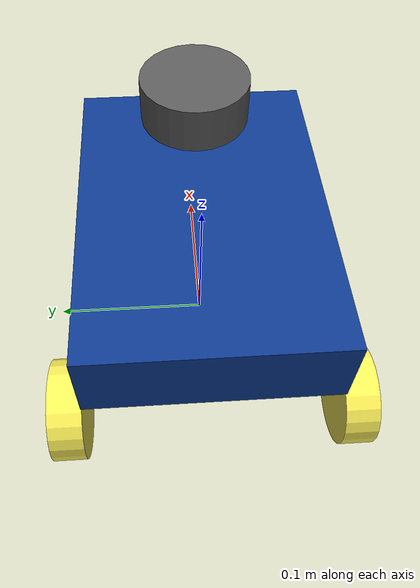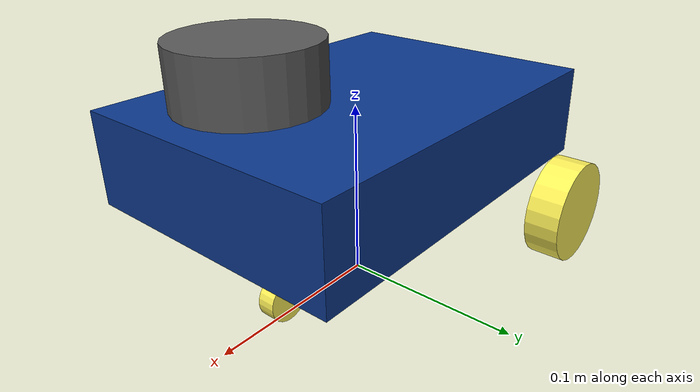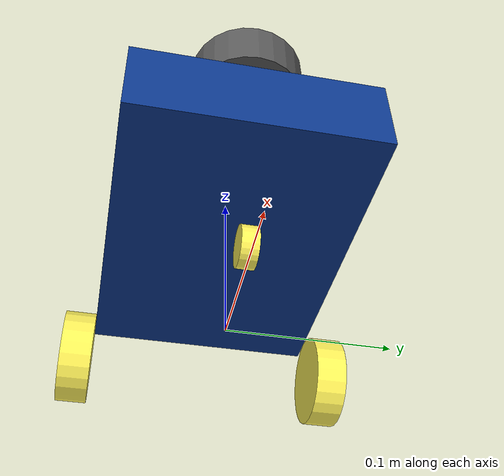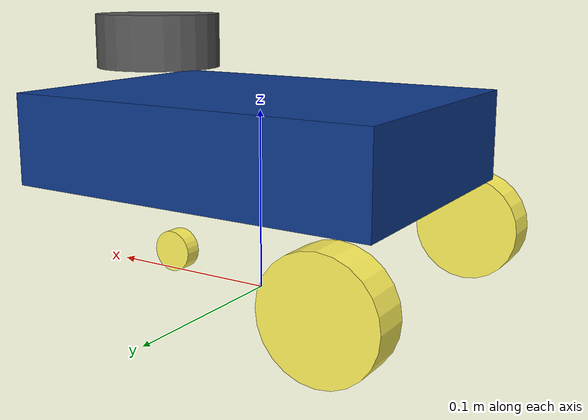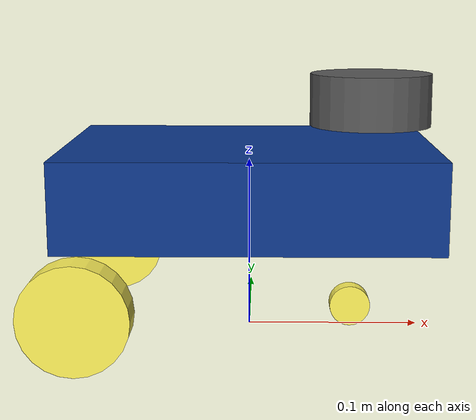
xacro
<?xml version="1.0"?>
<robot xmlns:xacro="http://www.ros.org/wiki/xacro" name="agv_robot">
  <!-- Geometry parameters -->
  <xacro:property name="base_length" value="0.210"/>
  <xacro:property name="base_width" value="0.150"/>
  <xacro:property name="base_height" value="0.05"/>
  <xacro:property name="wheel_radius" value="0.03"/>
  <xacro:property name="wheel_width" value="0.02"/>
  <xacro:property name="wheel_separation" value="0.190"/>
  <xacro:property name="base_link_z" value="${2.0 * wheel_radius}"/>
  <xacro:property name="drive_wheel_x" value="-0.09"/>
  <xacro:property name="drive_wheel_y" value="${base_width / 2.0 + wheel_width / 2.0}"/>
  <xacro:property name="caster_radius" value="0.012"/>
  <xacro:property name="caster_width" value="0.01"/>

  <!-- Mass parameters -->
  <xacro:property name="base_mass" value="3.0"/>
  <xacro:property name="wheel_mass" value="0.20"/>
  <xacro:property name="caster_mass" value="0.05"/>

  <xacro:macro name="box_inertia" params="mass x y z">
    <inertial>
      <mass value="${mass}"/>
      <origin xyz="0 0 0" rpy="0 0 0"/>
      <inertia
        ixx="${mass * (y*y + z*z) / 12.0}"
        ixy="0"
        ixz="0"
        iyy="${mass * (x*x + z*z) / 12.0}"
        iyz="0"
        izz="${mass * (x*x + y*y) / 12.0}"/>
    </inertial>
  </xacro:macro>

  <xacro:macro name="cylinder_inertia" params="mass radius length">
    <inertial>
      <mass value="${mass}"/>
      <origin xyz="0 0 0" rpy="0 0 0"/>
      <inertia
        ixx="${mass * (3.0 * radius * radius + length * length) / 12.0}"
        ixy="0"
        ixz="0"
        iyy="${mass * radius * radius / 2.0}"
        iyz="0"
        izz="${mass * (3.0 * radius * radius + length * length) / 12.0}"/>
    </inertial>
  </xacro:macro>

  <material name="body_blue">
    <color rgba="0.05 0.22 0.55 1.0"/>
  </material>

  <material name="wheel_yellow">
    <color rgba="1.0 0.95 0.35 1.0"/>
  </material>

  <material name="sensor_gray">
    <color rgba="0.35 0.35 0.35 1.0"/>
  </material>

  <link name="base_footprint"/>

  <joint name="base_footprint_to_base_link" type="fixed">
    <parent link="base_footprint"/>
    <child link="base_link"/>
    <origin xyz="0 0 ${base_link_z}" rpy="0 0 0"/>
  </joint>

  <link name="base_link">
    <visual>
      <origin xyz="0 0 ${base_height / 2.0}" rpy="0 0 0"/>
      <geometry>
        <box size="${base_length} ${base_width} ${base_height}"/>
      </geometry>
      <material name="body_blue"/>
    </visual>
    <collision>
      <origin xyz="0 0 ${base_height / 2.0}" rpy="0 0 0"/>
      <geometry>
        <box size="${base_length} ${base_width} ${base_height}"/>
      </geometry>
    </collision>
    <xacro:box_inertia mass="${base_mass}" x="${base_length}" y="${base_width}" z="${base_height}"/>
  </link>

  <xacro:macro name="drive_wheel" params="prefix y">
    <link name="${prefix}_wheel_link">
      <visual>
        <origin xyz="0 0 0" rpy="${pi / 2.0} 0 0"/>
        <geometry>
          <cylinder radius="${wheel_radius}" length="${wheel_width}"/>
        </geometry>
        <material name="wheel_yellow"/>
      </visual>
      <collision>
        <origin xyz="0 0 0" rpy="${pi / 2.0} 0 0"/>
        <geometry>
          <cylinder radius="${wheel_radius}" length="${wheel_width}"/>
        </geometry>
      </collision>
      <xacro:cylinder_inertia mass="${wheel_mass}" radius="${wheel_radius}" length="${wheel_width}"/>
    </link>

    <joint name="${prefix}_wheel_joint" type="continuous">
      <parent link="base_link"/>
      <child link="${prefix}_wheel_link"/>
      <origin xyz="${drive_wheel_x} ${y} ${wheel_radius - base_link_z}" rpy="0 0 0"/>
      <axis xyz="0 1 0"/>
    </joint>
  </xacro:macro>

  <xacro:drive_wheel prefix="left" y="${drive_wheel_y}"/>
  <xacro:drive_wheel prefix="right" y="${-drive_wheel_y}"/>

  <link name="caster_link">
    <visual>
      <origin xyz="0 0 0" rpy="${pi / 2.0} 0 0"/>
      <geometry>
        <cylinder radius="${caster_radius}" length="${caster_width}"/>
      </geometry>
      <material name="wheel_yellow"/>
    </visual>
    <collision>
      <origin xyz="0 0 0" rpy="${pi / 2.0} 0 0"/>
      <geometry>
        <cylinder radius="${caster_radius}" length="${caster_width}"/>
      </geometry>
    </collision>
    <xacro:cylinder_inertia mass="${caster_mass}" radius="${caster_radius}" length="${caster_width}"/>
  </link>

  <joint name="caster_joint" type="fixed">
    <parent link="base_link"/>
    <child link="caster_link"/>
    <origin xyz="0.06 0 ${caster_radius - base_link_z}" rpy="0 0 0"/>
  </joint>

  <link name="imu_link"/>

  <joint name="imu_joint" type="fixed">
    <parent link="base_link"/>
    <child link="imu_link"/>
    <origin xyz="0 0 ${base_height + 0.010}" rpy="0 0 0"/>
  </joint>

  <link name="base_laser">
    <visual>
      <origin xyz="0 0 0" rpy="0 0 0"/>
      <geometry>
        <cylinder radius="0.035" length="0.030"/>
      </geometry>
      <material name="sensor_gray"/>
    </visual>
    <collision>
      <origin xyz="0 0 0" rpy="0 0 0"/>
      <geometry>
        <cylinder radius="0.035" length="0.030"/>
      </geometry>
    </collision>
    <xacro:cylinder_inertia mass="0.10" radius="0.035" length="0.030"/>
  </link>

  <joint name="laser_joint" type="fixed">
    <parent link="base_link"/>
    <child link="base_laser"/>
    <origin xyz="0.070 0 ${base_height + 0.025}" rpy="0 0 ${pi}"/>
  </joint>
</robot>
